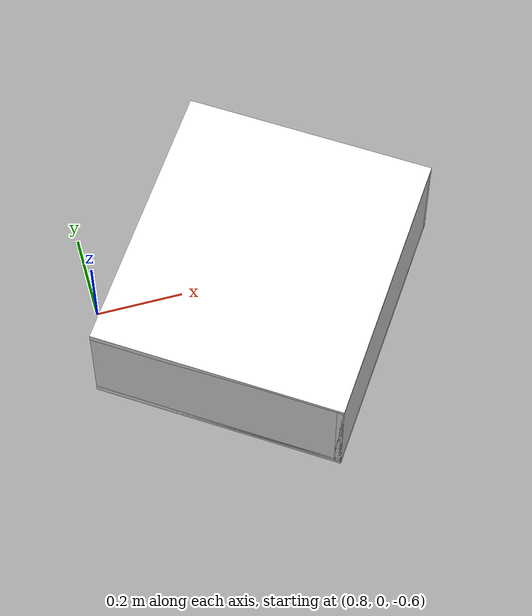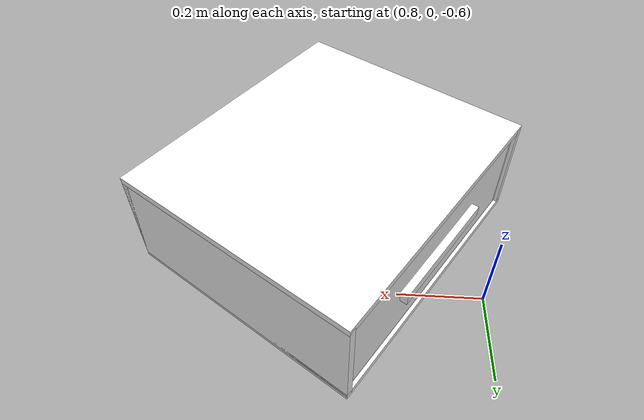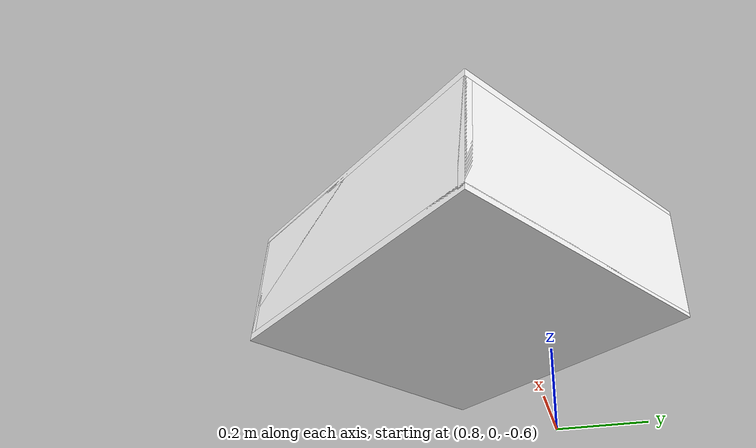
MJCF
<mujoco model="drawer">
        <compiler angle="radian" eulerseq='zxy' />
        <option gravity = "0 0 0" />
        <option>
            <flag contact = "disable"/>
        </option>
        <statistic	extent="1.0" center="0.0 0.0 0.0"/>
        <visual>
            <map fogstart="3" fogend="5" force="0.1" znear=" 0.100000 " zfar=" 12.000000 "/>
        </visual>
        <size njmax="500" nconmax="100" />
        <actuator>
            <velocity joint="drawerJ" name="viva_revolution" kv='10'></velocity>
        </actuator>
        <asset>
            <texture builtin="flat" name="objtex" height="32" width="32" rgb1="1 1 1" type="cube"></texture>
            <texture builtin="flat" name="handletex" height="32" width="32" rgb1="1 1 1" type="cube"></texture>
            <material name="geomObj" shininess="0.03" specular="0.75" texture="objtex"></material>
            <material name="geomHandle" shininess="0.03" specular="0.75" texture="handletex"></material>
        </asset>
        <worldbody>
            <body name="cabinet_bottom" pos= " 1.162096 -0.125259 -0.506402 "  quat= " 0.292104 0.000000 0.000000 0.956387" >
                <inertial pos="0 0 0" mass="1" diaginertia="1 1 1" />
                <geom size= " 0.281526 0.317321 0.007819 "  type="box" material="geomObj" name="b"/>
                <body name="cabinet_left" pos= " 0.000000 -0.309502 0.114370 " >
                    <inertial pos="0 0 0" mass="1" diaginertia="1 1 1" />
                    <geom size= " 0.281526 0.007819 0.114370 "  type="box" material="geomObj" name="c" />
                </body>
                <body name="cabinet_right" pos= " 0.000000 0.309502 0.114370 " >
                    <inertial pos="0 0 0" mass="1" diaginertia="1 1 1" />
                    <geom size= " 0.281526 0.007819 0.114370 "  type="box" material="geomObj" name="d" />
                </body>
                <body name="cabinet_top" pos= " 0.000000 0.000000 0.228740 " >
                    <inertial pos="0 0 0" mass="1" diaginertia="1 1 1" />
                    <geom size= " 0.281526 0.317321 0.007819 "  type="box" material="geomObj" name="e"/>
                </body>
                <body name="cabinet_back" pos= " -0.273707 0.000000 0.114370 "  >
                    <inertial pos="0 0 0" mass="1" diaginertia="1 1 1" />
                    <geom size= " 0.007819 0.317321 0.114370 "  type="box" material="geomObj" name="f" />
                </body>
                <body name="drawer" pos= " 0.000000 0.000000 0.003909 "  >
                    <geom size= " 0.273707 0.309502 0.007819 "  type="box" material="geomObj" name="ddddfadfadsfac" />
                    <joint name="drawerJ" pos="0 0 0" axis="1 0 0" type="slide" limited="true" range= "0  0.4222892224788666 "  />
                    <inertial pos="0 0 0" mass="1" diaginertia="1 1 1" />
                    <body name="drawer_left" pos= " 0.000000 -0.301683 0.114370 " >
                        <inertial pos="0 0 0" mass="1" diaginertia="1 1 1" />
                        <geom size= " 0.273707 0.007819 0.106551 "  type="box" material="geomObj" name="ddc" />
                    </body>
                    <body name="drawer_right" pos= " 0.000000 0.301683 0.114370 " >
                        <inertial pos="0 0 0" mass="1" diaginertia="1 1 1" />
                        <geom size= " 0.273707 0.007819 0.106551 "  type="box" material="geomObj" name="dddd" />
                    </body>
                    <body name="drawer_front" pos= " 0.265888 0.000000 0.114370 " >
                        <inertial pos="0 0 0" mass="1" diaginertia="1 1 1" />
                        <geom size= " 0.007819 0.309502 0.106551 "  type="box" material="geomObj" name="eeeee"/>
                    </body>
                    <body name="drawer_back" pos= " -0.273707 0.000000 0.114370 "  >
                        <inertial pos="0 0 0" mass="1" diaginertia="1 1 1" />
                        <geom size= " 0.007819 0.309502 0.106551 "  type="box" material="geomObj" name="fffff" />
                    </body>
                    <body name="knob" pos= " 0.281526 0.000000 0.114370 " >
                        <inertial pos="0 0 0" mass="0.1" diaginertia="0.1 0.1 0.1" />
                        <geom size= " 0.008757 0.142384 0.013021 "  pos="0 0 0" type="box" material="geomHandle" name="handle"/>
                    </body>
                </body>
            </body>
            <body name="external_camera_body_0" pos="0.0 0 0.00">
                <camera euler="-1.57 1.57 0.0" fovy=" 54.280851 " name="external_camera_0" pos="0.0 0 0"></camera>
                <inertial pos= " 0.00 0.0 0.000000 " mass="1" diaginertia="1 1 1" />
                <joint name="cam_j" pos="0.0 0 0" axis = "1 0 0" type="free" />
            </body>
        </worldbody>
    </mujoco>
